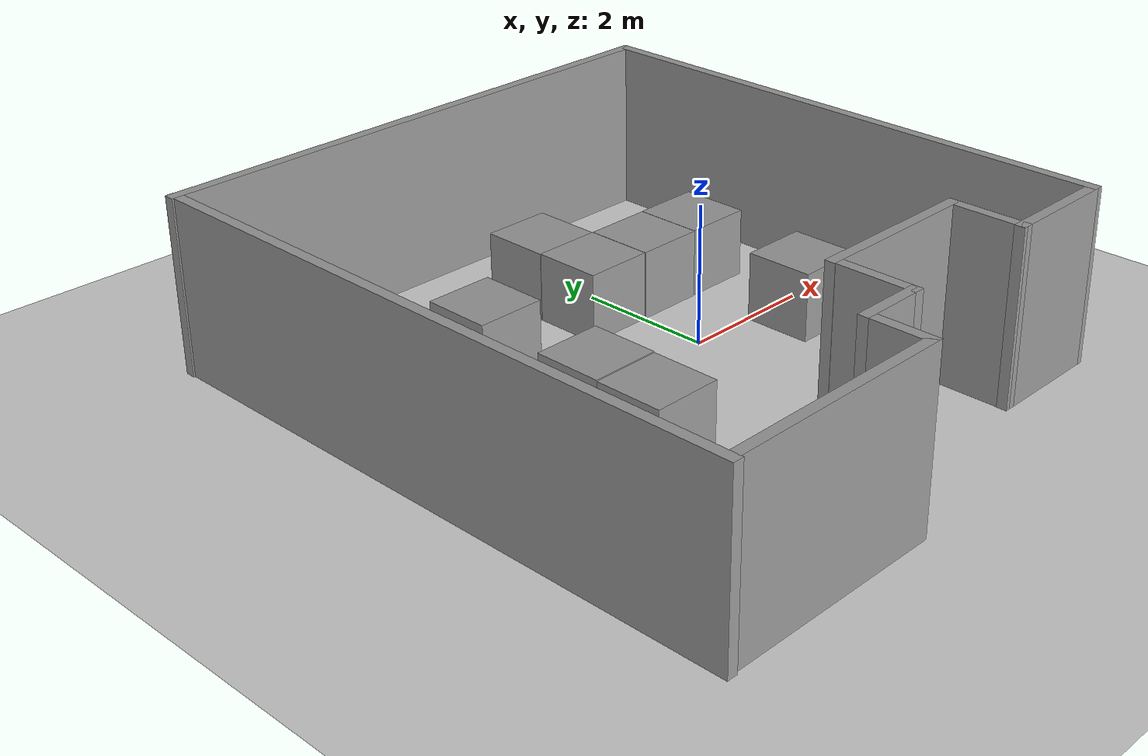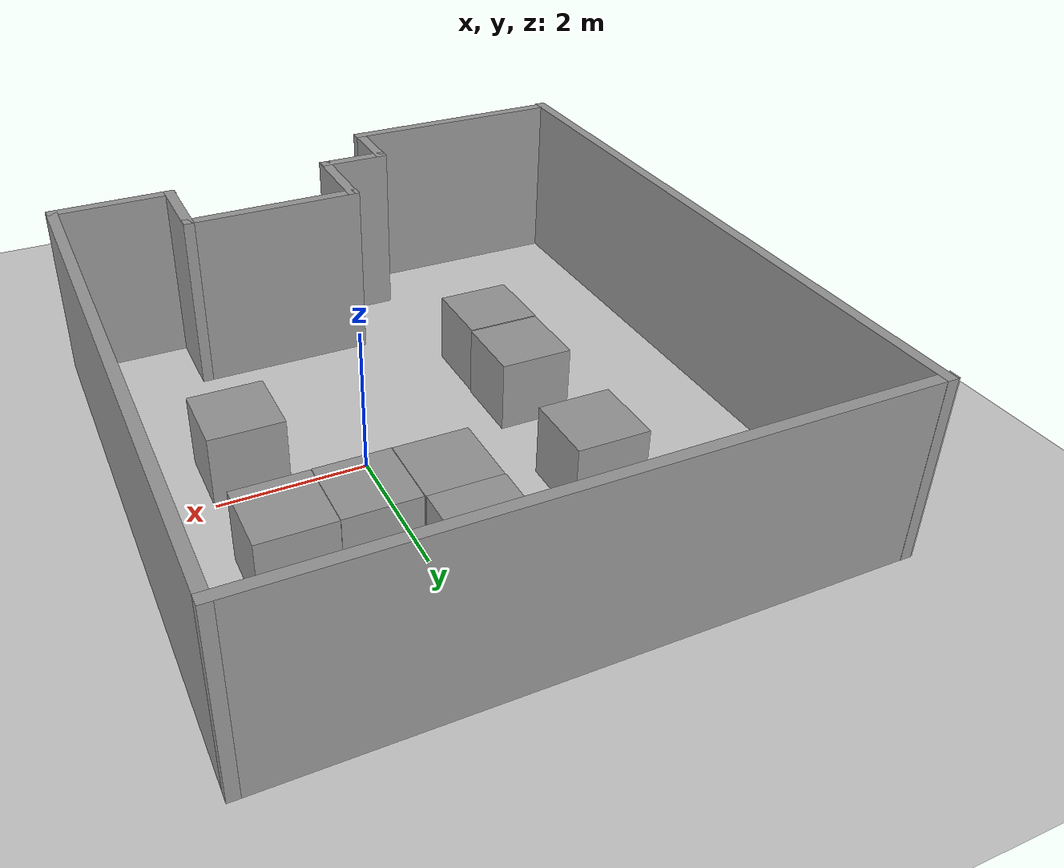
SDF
<sdf version="1.7">
 <world name="real_world">
  <plugin name="gazebo_ros_state" filename="libgazebo_ros_state.so"><update_rate>60</update_rate></plugin>
  <light name="sun" type="directional">
   <pose>0 0 10 0 -0 0</pose>
   <diffuse>0.8 0.8 0.8 1</diffuse>
   <specular>0.2 0.2 0.2 1</specular>
   <attenuation>
    <range>1000</range>
    <constant>0.9</constant>
    <linear>0.01</linear>
    <quadratic>0.001</quadratic>
   </attenuation>
   <direction>-0.5 0.1 -0.9</direction>
   <spot><inner_angle>0</inner_angle><outer_angle>0</outer_angle><falloff>0</falloff></spot>
  </light>
  <spherical_coordinates>
   <surface_model>EARTH_WGS84</surface_model>
   <latitude_deg>43.5655</latitude_deg>
   <longitude_deg>1.4740</longitude_deg>
   <elevation>150</elevation>
   <heading_deg>180</heading_deg>
  </spherical_coordinates>
  <model name="ground_plane">
   <static>1</static>
   <link name="link">
    <collision name="collision">
     <geometry><plane><normal>0 0 1</normal><size>100 100</size></plane></geometry>
     <surface><friction><ode><mu>100</mu><mu2>50</mu2></ode></friction></surface>
    </collision>
    <visual name="visual">
     <cast_shadows>0</cast_shadows>
     <geometry><plane><normal>0 0 1</normal><size>100 100</size></plane></geometry>
     <material>
      <script><uri>file://media/materials/scripts/gazebo.material</uri><name>Gazebo/Grey</name></script>
     </material>
    </visual>
   </link>
  </model>
  <gravity>0 0 -9.8</gravity>
  <magnetic_field>6e-06 2.3e-05 -4.2e-05</magnetic_field>
  <atmosphere type="adiabatic"/>
  <physics type="ode">
   <max_step_size>0.001</max_step_size>
   <real_time_factor>1</real_time_factor>
   <real_time_update_rate>1000</real_time_update_rate>
  </physics>
  <scene><ambient>0.4 0.4 0.4 1</ambient><background>0.7 0.7 0.7 1</background><shadows>1</shadows></scene>
  <audio><device>default</device></audio>
  <spherical_coordinates>
   <surface_model>EARTH_WGS84</surface_model>
   <latitude_deg>0</latitude_deg>
   <longitude_deg>0</longitude_deg>
   <elevation>0</elevation>
   <heading_deg>0</heading_deg>
  </spherical_coordinates>
  <model name="unit_box">
   <static>1</static>
   <pose>1.51028 -0.513336 0.499995 1e-05 -0 0</pose>
   <link name="link">
    <inertial>
     <mass>1</mass>
     <inertia>
      <ixx>0.166667</ixx>
      <ixy>0</ixy>
      <ixz>0</ixz>
      <iyy>0.166667</iyy>
      <iyz>0</iyz>
      <izz>0.166667</izz>
     </inertia>
    </inertial>
    <collision name="collision"><geometry><box><size>1 1 1</size></box></geometry></collision>
    <visual name="visual">
     <geometry><box><size>1 1 1</size></box></geometry>
     <material>
      <script><name>Gazebo/Grey</name><uri>file://media/materials/scripts/gazebo.material</uri></script>
     </material>
    </visual>
   </link>
  </model>
  <model name="unit_box_0">
   <static>1</static>
   <pose>-2.47843 -0.518546 0.499995 0 -1e-05 0</pose>
   <link name="link">
    <inertial>
     <mass>1</mass>
     <inertia>
      <ixx>0.166667</ixx>
      <ixy>0</ixy>
      <ixz>0</ixz>
      <iyy>0.166667</iyy>
      <iyz>0</iyz>
      <izz>0.166667</izz>
     </inertia>
    </inertial>
    <collision name="collision"><geometry><box><size>1 1 1</size></box></geometry></collision>
    <visual name="visual">
     <geometry><box><size>1 1 1</size></box></geometry>
     <material>
      <script><name>Gazebo/Grey</name><uri>file://media/materials/scripts/gazebo.material</uri></script>
     </material>
    </visual>
   </link>
  </model>
  <model name="unit_box_1">
   <static>1</static>
   <pose>-2.49514 -1.53862 0.499995 1e-05 -0 0</pose>
   <link name="link">
    <inertial>
     <mass>1</mass>
     <inertia>
      <ixx>0.166667</ixx>
      <ixy>0</ixy>
      <ixz>0</ixz>
      <iyy>0.166667</iyy>
      <iyz>0</iyz>
      <izz>0.166667</izz>
     </inertia>
    </inertial>
    <collision name="collision"><geometry><box><size>1 1 1</size></box></geometry></collision>
    <visual name="visual">
     <geometry><box><size>1 1 1</size></box></geometry>
     <material>
      <script><name>Gazebo/Grey</name><uri>file://media/materials/scripts/gazebo.material</uri></script>
     </material>
    </visual>
   </link>
  </model>
  <model name="unit_box_2">
   <static>1</static>
   <pose>-2.45172 1.50578 0.499995 0 -1e-05 0</pose>
   <link name="link">
    <inertial>
     <mass>1</mass>
     <inertia>
      <ixx>0.166667</ixx>
      <ixy>0</ixy>
      <ixz>0</ixz>
      <iyy>0.166667</iyy>
      <iyz>0</iyz>
      <izz>0.166667</izz>
     </inertia>
    </inertial>
    <collision name="collision"><geometry><box><size>1 1 1</size></box></geometry></collision>
    <visual name="visual">
     <geometry><box><size>1 1 1</size></box></geometry>
     <material>
      <script><name>Gazebo/Grey</name><uri>file://media/materials/scripts/gazebo.material</uri></script>
     </material>
    </visual>
   </link>
  </model>
  <model name="unit_box_3">
   <static>1</static>
   <pose>-0.472894 2.52732 0.499995 0 1e-05 2.3e-05</pose>
   <link name="link">
    <inertial>
     <mass>1</mass>
     <inertia>
      <ixx>0.166667</ixx>
      <ixy>0</ixy>
      <ixz>0</ixz>
      <iyy>0.166667</iyy>
      <iyz>0</iyz>
      <izz>0.166667</izz>
     </inertia>
    </inertial>
    <collision name="collision"><geometry><box><size>1 1 1</size></box></geometry></collision>
    <visual name="visual">
     <geometry><box><size>1 1 1</size></box></geometry>
     <material>
      <script><name>Gazebo/Grey</name><uri>file://media/materials/scripts/gazebo.material</uri></script>
     </material>
    </visual>
   </link>
  </model>
  <model name="unit_box_4">
   <static>1</static>
   <pose>-0.464536 1.52731 0.499995 0 -1e-05 2.3e-05</pose>
   <link name="link">
    <inertial>
     <mass>1</mass>
     <inertia>
      <ixx>0.166667</ixx>
      <ixy>0</ixy>
      <ixz>0</ixz>
      <iyy>0.166667</iyy>
      <iyz>0</iyz>
      <izz>0.166667</izz>
     </inertia>
    </inertial>
    <collision name="collision"><geometry><box><size>1 1 1</size></box></geometry></collision>
    <visual name="visual">
     <geometry><box><size>1 1 1</size></box></geometry>
     <material>
      <script><name>Gazebo/Grey</name><uri>file://media/materials/scripts/gazebo.material</uri></script>
     </material>
    </visual>
   </link>
  </model>
  <model name="unit_box_5">
   <static>1</static>
   <pose>0.541582 1.52309 0.499995 1e-05 -0 0</pose>
   <link name="link">
    <inertial>
     <mass>1</mass>
     <inertia>
      <ixx>0.166667</ixx>
      <ixy>0</ixy>
      <ixz>0</ixz>
      <iyy>0.166667</iyy>
      <iyz>0</iyz>
      <izz>0.166667</izz>
     </inertia>
    </inertial>
    <collision name="collision"><geometry><box><size>1 1 1</size></box></geometry></collision>
    <visual name="visual">
     <geometry><box><size>1 1 1</size></box></geometry>
     <material>
      <script><name>Gazebo/Grey</name><uri>file://media/materials/scripts/gazebo.material</uri></script>
     </material>
    </visual>
   </link>
  </model>
  <model name="unit_box_6">
   <static>1</static>
   <pose>1.54618 1.53023 0.499995 0 -1e-05 0</pose>
   <link name="link">
    <inertial>
     <mass>1</mass>
     <inertia>
      <ixx>0.166667</ixx>
      <ixy>0</ixy>
      <ixz>0</ixz>
      <iyy>0.166667</iyy>
      <iyz>0</iyz>
      <izz>0.166667</izz>
     </inertia>
    </inertial>
    <collision name="collision"><geometry><box><size>1 1 1</size></box></geometry></collision>
    <visual name="visual">
     <geometry><box><size>1 1 1</size></box></geometry>
     <material>
      <script><name>Gazebo/Grey</name><uri>file://media/materials/scripts/gazebo.material</uri></script>
     </material>
    </visual>
   </link>
  </model>
  <model name="Untitled">
   <pose>-1.08226 -0.357031 0 0 -0 0</pose>
   <link name="Wall_0">
    <collision name="Wall_0_Collision">
     <geometry><box><size>9.25 0.15 2.5</size></box></geometry>
     <pose>0 0 1.25 0 -0 0</pose>
    </collision>
    <visual name="Wall_0_Visual">
     <pose>0 0 1.25 0 -0 0</pose>
     <geometry><box><size>9.25 0.15 2.5</size></box></geometry>
     <material>
      <script><uri>file://media/materials/scripts/gazebo.material</uri><name>Gazebo/Grey</name></script>
      <ambient>1 1 1 1</ambient>
     </material>
     <meta><layer>0</layer></meta>
    </visual>
    <pose>-4.02602 -0 0 0 -0 1.5708</pose>
   </link>
   <link name="Wall_11">
    <collision name="Wall_11_Collision">
     <geometry><box><size>1.26387 0.15 2.5</size></box></geometry>
     <pose>0 0 1.25 0 -0 0</pose>
    </collision>
    <visual name="Wall_11_Visual">
     <pose>0 0 1.25 0 -0 0</pose>
     <geometry><box><size>1.26387 0.15 2.5</size></box></geometry>
     <material>
      <script><uri>file://media/materials/scripts/gazebo.material</uri><name>Gazebo/Grey</name></script>
      <ambient>1 1 1 1</ambient>
     </material>
     <meta><layer>0</layer></meta>
    </visual>
    <pose>0.080561 -3.11174 0 0 -0 -1.5708</pose>
   </link>
   <link name="Wall_12">
    <collision name="Wall_12_Collision">
     <geometry><box><size>1 0.15 2.5</size></box></geometry>
     <pose>0 0 1.25 0 -0 0</pose>
    </collision>
    <visual name="Wall_12_Visual">
     <pose>0 0 1.25 0 -0 0</pose>
     <geometry><box><size>1 0.15 2.5</size></box></geometry>
     <material>
      <script><uri>file://media/materials/scripts/gazebo.material</uri><name>Gazebo/Grey</name></script>
      <ambient>1 1 1 1</ambient>
     </material>
     <meta><layer>0</layer></meta>
    </visual>
    <pose>-0.357739 -3.66867 0 0 -0 3.14159</pose>
   </link>
   <link name="Wall_14">
    <collision name="Wall_14_Collision">
     <geometry><box><size>1 0.15 2.5</size></box></geometry>
     <pose>0 0 1.25 0 -0 0</pose>
    </collision>
    <visual name="Wall_14_Visual">
     <pose>0 0 1.25 0 -0 0</pose>
     <geometry><box><size>1 0.15 2.5</size></box></geometry>
     <material>
      <script><uri>file://media/materials/scripts/gazebo.material</uri><name>Gazebo/Grey</name></script>
      <ambient>1 1 1 1</ambient>
     </material>
     <meta><layer>0</layer></meta>
    </visual>
    <pose>-0.782739 -4.09367 0 0 -0 -1.5708</pose>
   </link>
   <link name="Wall_15">
    <collision name="Wall_15_Collision">
     <geometry><box><size>3.25 0.15 2.5</size></box></geometry>
     <pose>0 0 1.25 0 -0 0</pose>
    </collision>
    <visual name="Wall_15_Visual">
     <pose>0 0 1.25 0 -0 0</pose>
     <geometry><box><size>3.25 0.15 2.5</size></box></geometry>
     <material>
      <script><uri>file://media/materials/scripts/gazebo.material</uri><name>Gazebo/Grey</name></script>
      <ambient>1 1 1 1</ambient>
     </material>
     <meta><layer>0</layer></meta>
    </visual>
    <pose>-2.33274 -4.51867 0 0 -0 3.14159</pose>
   </link>
   <link name="Wall_2">
    <collision name="Wall_2_Collision">
     <geometry><box><size>8.25 0.15 2.5</size></box></geometry>
     <pose>0 0 1.25 0 -0 0</pose>
    </collision>
    <visual name="Wall_2_Visual">
     <pose>0 0 1.25 0 -0 0</pose>
     <geometry><box><size>8.25 0.15 2.5</size></box></geometry>
     <material>
      <script><uri>file://media/materials/scripts/gazebo.material</uri><name>Gazebo/Grey</name></script>
      <ambient>1 1 1 1</ambient>
     </material>
     <meta><layer>0</layer></meta>
    </visual>
    <pose>-2e-06 4.54597 0 0 -0 3.14159</pose>
   </link>
   <link name="Wall_4">
    <collision name="Wall_4_Collision">
     <geometry><box><size>8.273 0.15 2.5</size></box></geometry>
     <pose>0 0 1.25 0 -0 0</pose>
    </collision>
    <visual name="Wall_4_Visual">
     <pose>0 0 1.25 0 -0 0</pose>
     <geometry><box><size>8.273 0.15 2.5</size></box></geometry>
     <material>
      <script><uri>file://media/materials/scripts/gazebo.material</uri><name>Gazebo/Grey</name></script>
      <ambient>1 1 1 1</ambient>
     </material>
     <meta><layer>0</layer></meta>
    </visual>
    <pose>4.04977 0.484469 0 0 -0 -1.57085</pose>
   </link>
   <link name="Wall_6">
    <collision name="Wall_6_Collision">
     <geometry><box><size>1.76945 0.15 2.5</size></box></geometry>
     <pose>0 0 1.25 0 -0 0</pose>
    </collision>
    <visual name="Wall_6_Visual">
     <pose>0 0 1.25 0 -0 0</pose>
     <geometry><box><size>1.76945 0.15 2.5</size></box></geometry>
     <material>
      <script><uri>file://media/materials/scripts/gazebo.material</uri><name>Gazebo/Grey</name></script>
      <ambient>1 1 1 1</ambient>
     </material>
     <meta><layer>0</layer></meta>
    </visual>
    <pose>3.23223 -3.5802 0 0 -0 -3.13767</pose>
   </link>
   <link name="Wall_7">
    <collision name="Wall_7_Collision">
     <geometry><box><size>1.1787 0.15 2.5</size></box></geometry>
     <pose>0 0 1.25 0 -0 0</pose>
    </collision>
    <visual name="Wall_7_Visual">
     <pose>0 0 1.25 0 -0 0</pose>
     <geometry><box><size>1.1787 0.15 2.5</size></box></geometry>
     <material>
      <script><uri>file://media/materials/scripts/gazebo.material</uri><name>Gazebo/Grey</name></script>
      <ambient>1 1 1 1</ambient>
     </material>
     <meta><layer>0</layer></meta>
    </visual>
    <pose>2.43034 -3.06909 0 0 -0 1.57036</pose>
   </link>
   <link name="Wall_9">
    <collision name="Wall_9_Collision">
     <geometry><box><size>2.5 0.15 2.5</size></box></geometry>
     <pose>0 0 1.25 0 -0 0</pose>
    </collision>
    <visual name="Wall_9_Visual">
     <pose>0 0 1.25 0 -0 0</pose>
     <geometry><box><size>2.5 0.15 2.5</size></box></geometry>
     <material>
      <script><uri>file://media/materials/scripts/gazebo.material</uri><name>Gazebo/Grey</name></script>
      <ambient>1 1 1 1</ambient>
     </material>
     <meta><layer>0</layer></meta>
    </visual>
    <pose>1.24796 -2.5548 0 0 -0 3.14159</pose>
   </link>
   <static>1</static>
  </model>
 </world>
</sdf>
